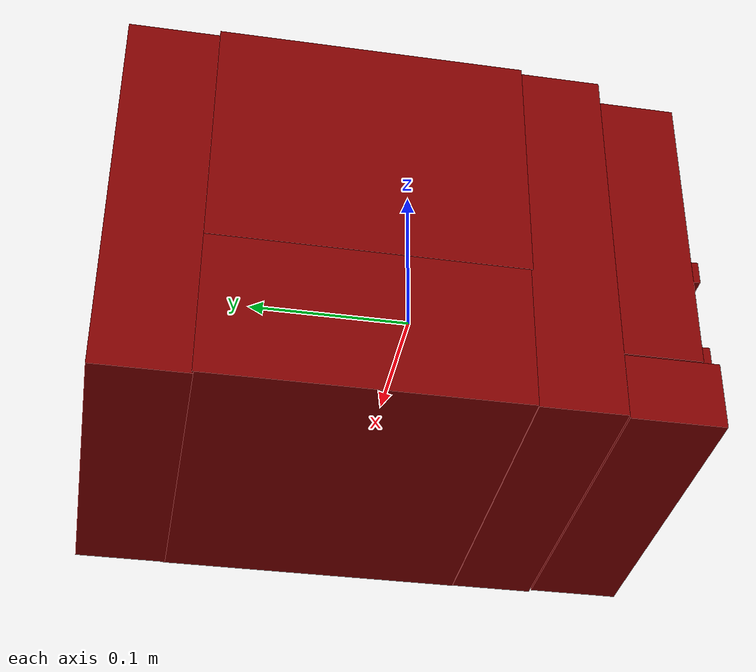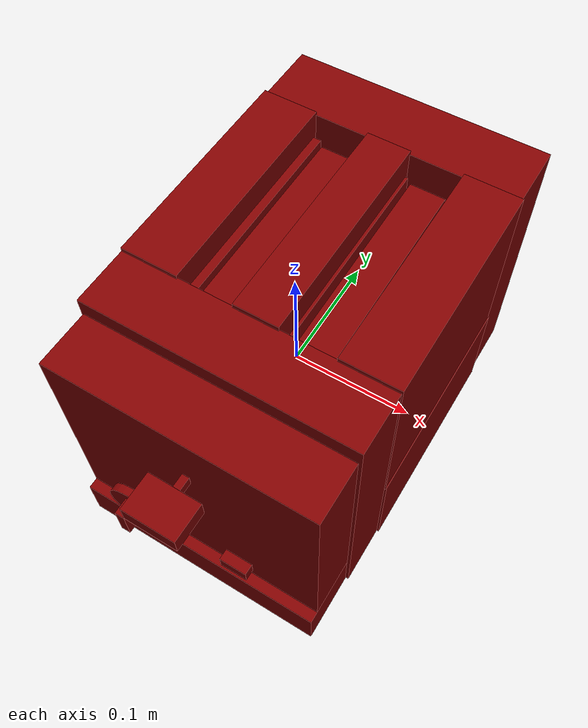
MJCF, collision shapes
<?xml version='1.0' encoding='UTF-8'?>
<mujoco model="model">
  <compiler angle="radian"/>
  <asset>
    <mesh file="visuals/Body001.obj" name="Body001_vis"/>
    <mesh file="visuals/Body002.obj" name="Body002_vis"/>
    <mesh file="visuals/Button001.obj" name="Button001_vis"/>
    <mesh file="visuals/Knob001.obj" name="Knob001_vis"/>
    <mesh file="visuals/Lever001.obj" name="Lever001_vis"/>
    <texture file="visuals/T_BC001.png" name="Body001_material" type="2d"/>
    <material name="Body001_material" rgba="1 1 1 1.0" texture="Body001_material" shininess="0.1" specular="3"/>
    <texture file="visuals/T_BC001.png" name="Body002_material" type="2d"/>
    <material name="Body002_material" rgba="1 1 1 1.0" texture="Body002_material" shininess="0.1" specular="4"/>
    <texture file="visuals/T_BC001.png" name="Button001_material" type="2d"/>
    <material name="Button001_material" rgba="1 1 1 1.0" texture="Button001_material" shininess="0.4472135901451111" specular="0.3103448502657381"/>
    <texture file="visuals/T_BC001.png" name="Knob001_material" type="2d"/>
    <material name="Knob001_material" rgba="1 1 1 1.0" texture="Knob001_material" shininess="0.4472135901451111" specular="0.3103448502657381"/>
    <texture file="visuals/T_BC001.png" name="Lever001_material" type="2d"/>
    <material name="Lever001_material" rgba="1 1 1 1.0" texture="Lever001_material" shininess="0.4472135901451111" specular="0.3103448502657381"/>
  </asset>
  <default>
    <default class="visual">
      <geom conaffinity="0" contype="0" group="1" type="mesh"/>
    </default>
    <default class="collision">
      <geom group="0" rgba="0.5 0 0 0.5"/>
    </default>
    <default class="spawn">
      <geom group="0" rgba="1 1 1 0.5" contype="0" conaffinity="0"/>
      <site group="0" rgba="1 1 1 0.5"/>
    </default>
    <default class="region">
      <geom group="1" conaffinity="0" contype="0" rgba="0 1 0 0"/>
    </default>
  </default>
  <worldbody>
    <body>
      <body name="object">
        <geom mesh="Body001_vis" type="mesh" solimp="0.998 0.998 0.001" solref="0.001 1" density="100" friction="0.95 0.3 0.1" class="visual" material="Body001_material"/>
        <geom class="collision" type="box" pos="-0.00040163908852264285 -0.07454797625541687 -0.0026495810598134995" size="0.11039051413536072 0.025103989988565445 0.12068398296833038" quat="1.0 0.0 0.0 0.0"/>
        <geom class="collision" type="box" pos="-0.00033332881866954267 -0.12829747796058655 -0.10284927487373352" size="0.1079176813364029 0.027681391686201096 0.02048426866531372" quat="1.0 0.0 0.0 0.0"/>
        <geom class="collision" type="box" pos="-0.00013809421216137707 -0.12369659543037415 0.011753419414162636" size="0.10779385268688202 0.02319900318980217 0.09309767186641693" quat="1.0 0.0 0.0 0.0"/>
        <geom class="collision" type="box" pos="-4.3832398660015315e-05 0.1622474044561386 -0.0023321490734815598" size="0.10977435111999512 0.027594581246376038 0.12100140750408173" quat="1.0 0.0 0.0 0.0"/>
        <geom class="collision" type="box" pos="0.08715267479419708 0.04248915985226631 0.044582758098840714" size="0.023920200765132904 0.09303570538759232 0.07697774469852448" quat="1.0 0.0 0.0 0.0"/>
        <geom class="collision" type="box" pos="0.00040275166975334287 0.04248915985226631 0.045785509049892426" size="0.01841512881219387 0.09303570538759232 0.0762452557682991" quat="1.0 0.0 0.0 0.0"/>
        <geom class="collision" type="box" pos="-0.08735804259777069 0.04248915985226631 0.04440835863351822" size="0.023687565699219704 0.09303570538759232 0.07680334150791168" quat="1.0 0.0 0.0 0.0"/>
        <geom class="collision" type="box" pos="0.00055832345969975 0.04248915985226631 -0.07616034150123596" size="0.11128278076648712 0.09303570538759232 0.04645710065960884" quat="1.0 0.0 0.0 0.0"/>
        <body name="Body002">
          <geom mesh="Body002_vis" type="mesh" solimp="0.998 0.998 0.001" solref="0.001 1" density="100" friction="0.95 0.3 0.1" class="visual" material="Body002_material"/>
          <geom class="collision" type="box" pos="-0.06536778807640076 0.04218008741736412 0.02996710129082203" size="0.008538492023944855 0.08927945792675018 0.06763520836830139" quat="1.0 0.0 0.0 0.0"/>
          <geom class="collision" type="box" pos="-0.012881415896117687 0.04218008741736412 0.02996710129082203" size="0.008538492023944855 0.08927945792675018 0.06763520836830139" quat="1.0 0.0 0.0 0.0"/>
          <geom class="collision" type="box" pos="0.012598068453371525 0.04218008741736412 0.02996710129082203" size="0.008538492023944855 0.08927945792675018 0.06763520836830139" quat="1.0 0.0 0.0 0.0"/>
          <geom class="collision" type="box" pos="0.06660368293523788 0.04218008741736412 0.02996710129082203" size="0.008538492023944855 0.08927945792675018 0.06763520836830139" quat="1.0 0.0 0.0 0.0"/>
        </body>
        <body name="Button001">
          <joint axis="0.0 1.0 0.0" pos="0.039973318576812744 -0.15427303314208984 -0.05465567111968994" limited="true" name="Button001_joint" range="0.0 0.002" type="slide" damping="1" frictionloss="1" armature=".01" stiffness="0.05"/>
          <geom mesh="Button001_vis" type="mesh" solimp="0.998 0.998 0.001" solref="0.001 1" density="100" friction="0.95 0.3 0.1" class="visual" material="Button001_material"/>
          <geom class="collision" type="box" pos="0.03997264802455902 -0.1543659120798111 -0.05450146272778511" size="0.011716900393366814 0.004514594096690416 0.006439151242375374" quat="1.0 0.0 0.0 0.0"/>
        </body>
        <body name="Knob001">
          <joint axis="0.0 1.0 0.0" pos="-0.05323660373687744 -0.16065458953380585 -0.05091375857591629" limited="true" name="Knob001_joint" range="0.0 5.445427266222309" type="hinge" damping="0.05" armature="0.001"/>
          <geom mesh="Knob001_vis" type="mesh" solimp="0.998 0.998 0.001" solref="0.001 1" density="100" friction="0.95 0.3 0.1" class="visual" material="Knob001_material"/>
          <geom class="collision" type="cylinder" pos="-0.05408919230103493 -0.1556653529405594 -0.050495218485593796" size="0.021991536021232605 0.00349594047293067" quat="0.7071067094802856 0.7071068286895752 0.0 0.0"/>
          <geom class="collision" type="box" pos="-0.053167667239904404 -0.16636617481708527 -0.05074932053685188" size="0.00418759835883975 0.007027548272162676 0.015308719128370285" quat="1.0 0.0 0.0 0.0"/>
        </body>
        <body name="Lever001">
          <joint axis="0.0 0.0 -1.0" pos="0.004226320888847113 -0.17239588499069214 0.051890116184949875" limited="true" name="Lever001_joint" range="0.0 0.11900000000000001" type="slide" damping="1" frictionloss="1" armature=".01" stiffness="1" springref="-2"/>
          <geom mesh="Lever001_vis" type="mesh" solimp="0.998 0.998 0.001" solref="0.001 1" density="100" friction="0.95 0.3 0.1" class="visual" material="Lever001_material"/>
          <geom class="collision" type="box" pos="0.039692290127277374 0.042644843459129333 0.09068061411380768" size="0.014999999664723873 0.08665281534194946 0.0027143359184265137" quat="0.9999619126319885 0.008726535364985466 0.0 0.0" name="slotR_floor"/>
          <geom class="collision" type="box" pos="-0.039725419133901596 0.042644843459129333 0.09068061411380768" size="0.014999999664723873 0.08665281534194946 0.0027143359184265137" quat="1.0 0.0 0.0 0.0" name="slotL_floor"/>
          <geom class="collision" type="box" pos="0.003922735806554556 -0.15407340228557587 0.05132896453142166" size="0.00293411104939878 0.0066086165606975555 0.004523640498518944" quat="1.0 0.0 0.0 0.0"/>
          <geom class="collision" type="box" pos="0.004072046838700771 -0.17476166784763336 0.05191998928785324" size="0.021971380338072777 0.015347134321928024 0.007976479828357697" quat="1.0 0.0 0.0 0.0" name="lever_knob"/>
        </body>
        <geom class="region" name="reg_main" type="box" pos="6.395511897849815e-10 0.016735952347517014 -0.00036261463537812233" size="0.10994743555784225 0.1730860471725464 0.12166330218315125"/>
      </body>
    </body>
  </worldbody>
  <actuator>
    <motor name="Button001_joint_actuator" joint="Button001_joint" gear="0.5"/>
    <motor name="Knob001_joint_actuator" joint="Knob001_joint" gear="5"/>
    <motor name="Lever001_joint_actuator" joint="Lever001_joint" gear="5"/>
  </actuator>
</mujoco>
